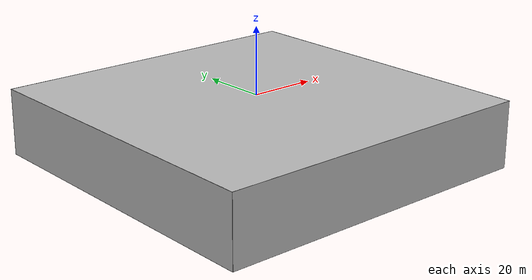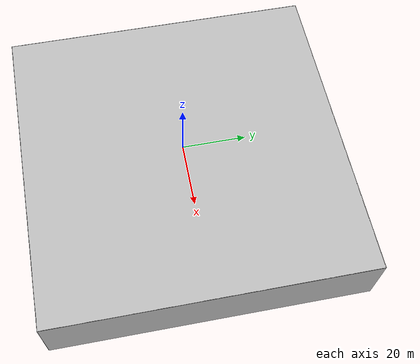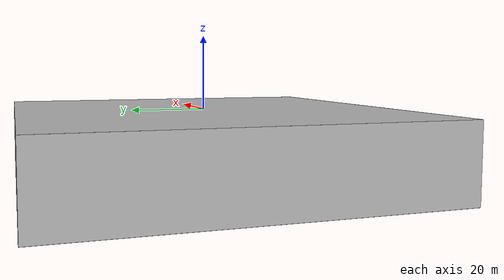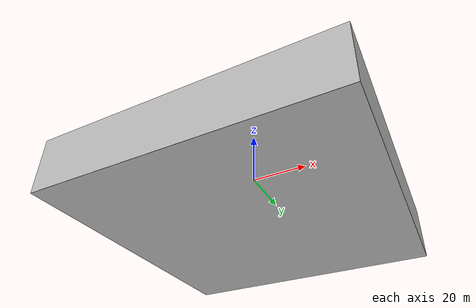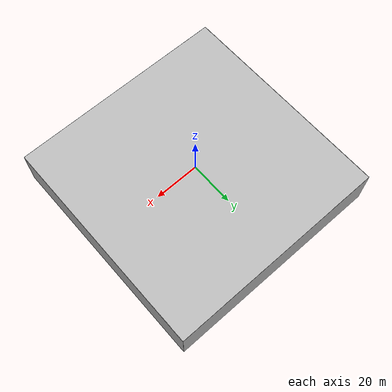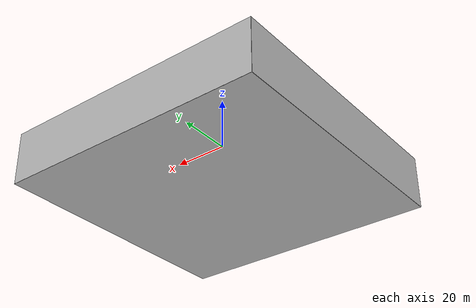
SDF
<?xml version="1.0" ?>
<!--
     Written by Kristoffer Rakstad Solberg, Student
     Copyright (c) 2019 Manta AUV, Vortex NTNU.
     All rights reserved.
-->

<sdf version="1.5">
  <model name="ocean_box">
    <static>true</static>
    <link name="link">
      <visual name="ground">
        <cast_shadows>false</cast_shadows>
        <pose>0 0 -20 0 0 0</pose>
        <geometry>
          <box>
            <size>100 100 .1</size>
          </box>
        </geometry>
        <material>
          <script>
            <uri>file://media/materials/scripts/sand.material</uri>
            <name>UUVSimulator/SandAndStones</name>
          </script>
        </material>
      </visual>

      <collision name="ground">
        <pose>0 0 -20 0 0 0</pose>
        <geometry>
          <box>
            <size>100 100 .1</size>
          </box>
        </geometry>
      </collision>

      <visual name="surface">
	<pose>0 0 0 0 0 0</pose>
        <cast_shadows>false</cast_shadows>
        <geometry>
          <mesh>
            <uri>file://media/models/sea_surface_1000m_x_1000m.dae</uri>
            <scale>0.1 0.1 0.05</scale>
          </mesh>
        </geometry>
        <material>
          <script>
            <uri>file://media/materials/scripts/waves.material</uri>
            <name>UUVSimulator/SimpleWaves</name>
          </script>
        </material>
      </visual>

      <visual name="north">
        <cast_shadows>false</cast_shadows>
        <pose>50 0 -10 0 0 0</pose>
        <geometry>
          <box>
            <size>.1 100 20</size>
          </box>
        </geometry>
        <material>
          <script>
            <uri>file://media/materials/scripts/water.material</uri>
            <name>UUVSimulator/SeaWall</name>
          </script>
        </material>
      </visual>

      <visual name="south">
        <cast_shadows>false</cast_shadows>
        <pose>-50 0 -10 0 0 0</pose>
        <geometry>
          <box>
            <size>.1 100 20</size>
          </box>
        </geometry>
        <material>
          <script>
            <uri>file://media/materials/scripts/water.material</uri>
            <name>UUVSimulator/SeaWall</name>
          </script>
        </material>
      </visual>

      <visual name="east">
        <cast_shadows>false</cast_shadows>
        <pose>0 -50 -10 0 0 0</pose>
        <geometry>
          <box>
            <size>100 .1 20</size>
          </box>
        </geometry>
        <material>
          <script>
            <uri>file://media/materials/scripts/water.material</uri>
            <name>UUVSimulator/SeaWall</name>
          </script>
        </material>
      </visual>

      <visual name="west">
        <cast_shadows>false</cast_shadows>
        <pose>0 50 -10 0 0 0</pose>
        <geometry>
          <box>
            <size>100 .1 20</size>
          </box>
        </geometry>
        <material>
          <script>
            <uri>file://media/materials/scripts/water.material</uri>
            <name>UUVSimulator/SeaWall</name>
          </script>
        </material>
      </visual>
    </link>
  </model>
</sdf>
